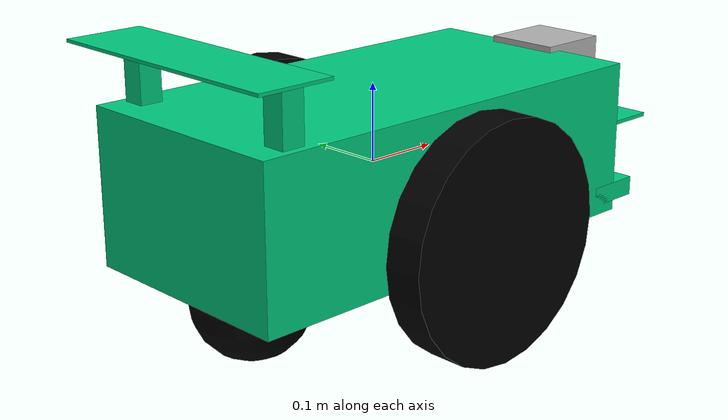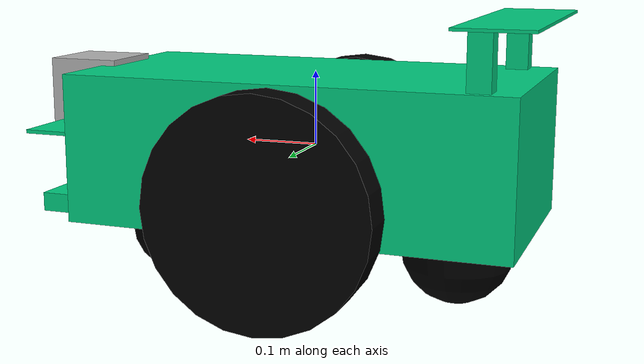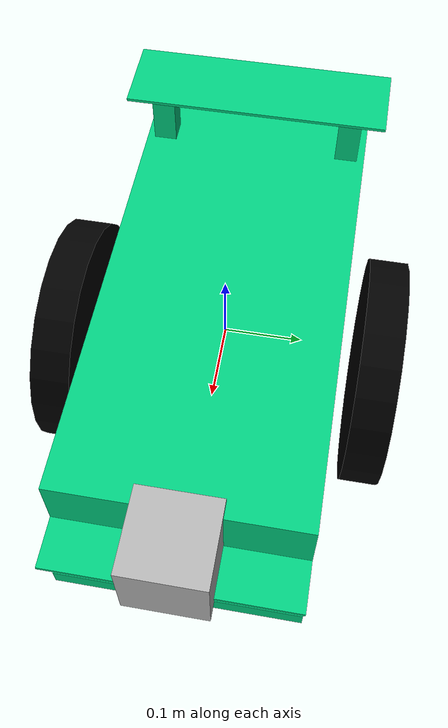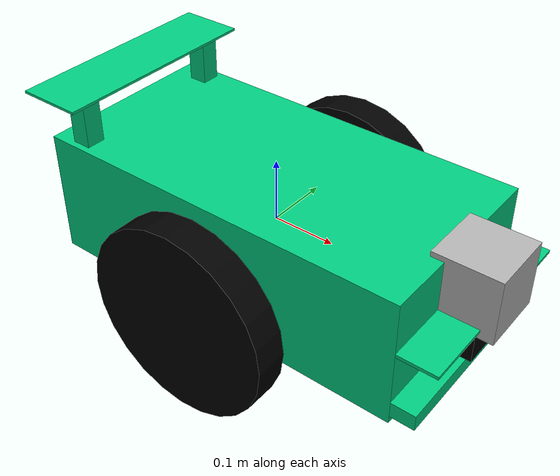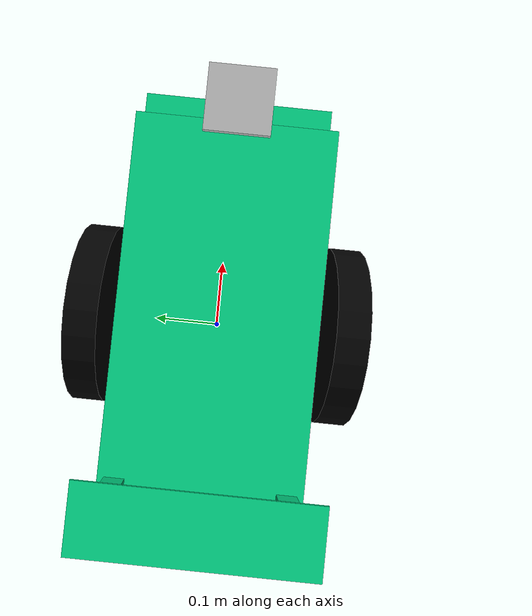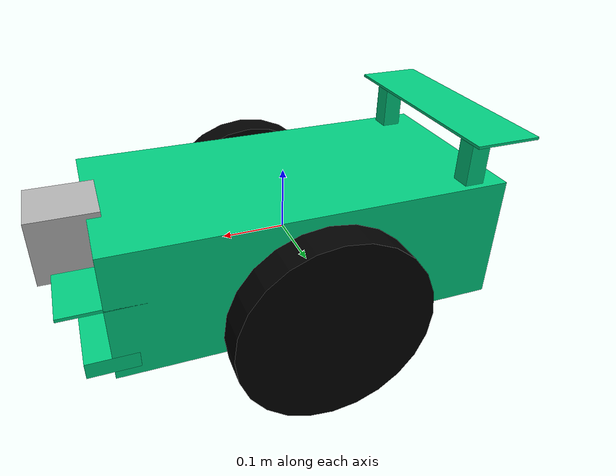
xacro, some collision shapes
<?xml version='1.0'?>

<robot name="dd_bot" xmlns:xacro="http://www.ros.org/wiki/xacro">
  <!-- Import file with plugins for the camera, the lidar and the wheels (differential drive model for the odometry) -->
  <xacro:include filename="$(find my_robot)/urdf/differential_drive_bot_plugins.gazebo" />
  <xacro:include filename="$(find my_robot)/urdf/colors.gazebo" />

  <link name="robot_footprint"></link>

  <joint name="robot_footprint_joint" type="fixed">
    <origin xyz="0 0 0" rpy="0 0 0" />
    <parent link="robot_footprint"/>
    <child link="chassis" />
  </joint>

  <link name='chassis'> <!-- This link encompasses the base and the caster wheels (Hence no need for additional links or joints)-->
    <pose>0 0 0.2 0 0 0</pose>

    <inertial>
      <mass value="15.0"/>
      <origin xyz="0.0 0 0" rpy=" 0 0 0"/>
      <inertia
          ixx="0.1" ixy="0" ixz="0"
          iyy="0.1" iyz="0"
          izz="0.1"
      />
    </inertial>

    <collision name='chassis_collision'>
      <origin xyz="0 0 0" rpy=" 0 0 0"/>
      <geometry>
        <box size="0.6 0.3 0.2"/>
      </geometry>
    </collision>

    <visual name='chassis_visual'>
      <origin xyz="0 0 0" rpy=" 0 0 0"/>
      <geometry>
        <box size="0.6 0.3 0.2"/>
      </geometry>
      <material name="greenish">
        <color rgba="0.0 0.8 0.5 1.0"/>
      </material>
    </visual>

    <collision name='caster_wheel_collision'>
      <origin xyz="0.2 0 -0.125" rpy=" 0 0 0"/>
      <geometry>
        <sphere radius="0.0748"/>
      </geometry>
    </collision>

    <visual name='caster_wheel_visual'>
      <origin xyz="0.2 0 -0.125" rpy=" 0 0 0"/>
      <geometry>
        <sphere radius="0.075"/>
      </geometry>
      <material name="black">
	      <color rgba="0.0 0.0 0.0 1.0"/>
      </material>
    </visual>

    <collision name='caster_wheel_rear_collision'>
      <origin xyz="-0.2 0 -0.125" rpy=" 0 0 0"/>
      <geometry>
        <sphere radius="0.0748"/>
      </geometry>
    </collision>

    <visual name='caster_wheel_rear_visual'>
      <origin xyz="-0.2 0 -0.125" rpy=" 0 0 0"/>
      <geometry>
        <sphere radius="0.075"/>
      </geometry>
      <material name="black">
	      <color rgba="0.0 0.0 0.0 1.0"/>
      </material>
    </visual>

  </link>

  <link name="right_wheel">

    <inertial>
      <mass value="5.0"/>
      <origin xyz="0.0 0 0" rpy=" 0 1.5707 1.5707"/>
      <inertia
          ixx="0.1" ixy="0" ixz="0"
          iyy="0.1" iyz="0"
          izz="0.1"
      />
    </inertial>

    <visual>
      <origin xyz="0 0 0" rpy="0 1.5707 1.5707"/>
      <geometry>
        <cylinder radius="0.15" length="0.05"/>
      </geometry>
      <material name="black">
	  <color rgba="0.0 0.0 0.0 1.0"/>
      </material>
    </visual>

    <collision>
      <origin xyz="0 0 0" rpy="0 1.5707 1.5707"/>
      <geometry>
	 <cylinder radius="0.15" length="0.05"/>
      </geometry>
    </collision>

  </link>

  <link name="left_wheel">

    <inertial>
      <mass value="5.0"/>
      <origin xyz="0.0 0 0" rpy=" 0 1.5707 1.5707"/>
      <inertia
          ixx="0.1" ixy="0" ixz="0"
          iyy="0.1" iyz="0"
          izz="0.1"
      />
    </inertial>

    <collision>
      <origin xyz="0 0 0" rpy="0 1.5707 1.5707"/>
      <geometry>
	<cylinder radius="0.15" length="0.05"/>
      </geometry>
    </collision>

    <visual>
      <origin xyz="0 0 0" rpy="0 1.5707 1.5707"/>
      <geometry>
	<cylinder radius="0.15" length="0.05"/>
      </geometry>
      <material name="black">
	  <color rgba="0.0 0.0 0.0 1.0"/>
      </material>
    </visual>

  </link>

  <joint type="continuous" name="right_wheel_hinge">
    <origin xyz="0.0 0.2 -0.05" rpy="0 0 0"/>
    <child link="right_wheel"/>
    <parent link="chassis"/>
    <axis xyz="0 1 0" rpy="0 0 0"/>
    <limit effort="10000" velocity="1000"/>
    <dynamics damping="1.0" friction="1.0"/>
  </joint>

  <joint type="continuous" name="left_wheel_hinge">
    <origin xyz="0.0 -0.2 -0.05" rpy="0 0 0"/>
    <child link="left_wheel"/>
    <parent link="chassis"/>
    <axis xyz="0 1 0" rpy="0 0 0"/>
    <limit effort="10000" velocity="1000"/>
    <dynamics damping="1.0" friction="1.0"/>
  </joint>

  <link name="camera_base_plate">
    <inertial>
      <mass value="0.5"/>
      <origin xyz="0.075 0.3 0.025" rpy=" 0 0 0.0"/>
      <inertia
          ixx="1e-6" ixy="0" ixz="0"
          iyy="1e-6" iyz="0"
          izz="1e-6"
      />
    </inertial>

    <collision>
      <origin xyz="0 0 0" rpy="0.0 0.0 0.0"/>
      <geometry>
	      <box size="0.075 0.3 0.025"/>
      </geometry>
    </collision>

    <visual>
      <origin xyz="0 0 0" rpy="0 0.0 0.0"/>
      <geometry>
	      <box size="0.075 0.3 0.025"/>
      </geometry>
      <material name="greenish">
        <color rgba="0.0 0.8 0.5 1.0"/>
      </material>
    </visual>

  </link>

  <joint type="fixed" name="camera_base_plate_joint">
    <origin xyz="0.3 0.0 -0.075 " rpy="0 0 0"/>
    <child link="camera_base_plate"/>
    <parent link="chassis"/>
    <axis xyz="0 1 0" rpy="0 0 0"/>
  </joint>

  <link name="camera">

    <inertial>
      <mass value="0.1"/>
      <origin xyz="0.05 0.05 0.05" rpy=" 0 0 0"/>
      <inertia
          ixx="1e-6" ixy="0" ixz="0"
          iyy="1e-6" iyz="0"
          izz="1e-6"
      />
    </inertial>

    <visual>
      <origin xyz="0 0 0" rpy="0 0 0"/>
      <geometry>
        <box size="0.05 0.05 0.05"/>
      </geometry>
      <material name="black">
	<color rgba="0.0 0.0 0.0 1.0"/>
      </material>
    </visual>

    <collision>
      <origin xyz="0 0 0" rpy="0 0 0"/>
      <geometry>
        <box size="0.05 0.05 0.05"/>
      </geometry>
    </collision>

  </link>

  <joint type="fixed" name="camera_joint">
      <origin xyz="0.02 0 0.0375" rpy="0 0 0"/>
      <child link="camera"/>
      <parent link="camera_base_plate"/>
      <axis xyz="0 1 0" rpy="0 0 0"/>
      <limit effort="10000" velocity="1000"/>
      <dynamics damping="1.0" friction="1.0"/>
  </joint>

  <link name="laser_base_plate">
    <inertial>
      <mass value="0.5"/>
      <origin xyz="1.2 0.3 0.005" rpy=" 0 0 0.0"/>
      <inertia
          ixx="1e-6" ixy="0" ixz="0"
          iyy="1e-6" iyz="0"
          izz="1e-6"
      />
    </inertial>

    <collision>
      <origin xyz="0 0 0" rpy="0.0 0.0 0.0"/>
      <geometry>
        <box size="1.2 0.3 0.005"/>
      </geometry>
    </collision>

    <visual>
      <origin xyz="0 0 0" rpy="0 0.0 0.0"/>
      <geometry>
        <box size="0.12 0.3 0.005"/>
      </geometry>
      <material name="greenish">
        <color rgba="0.0 0.8 0.5 1.0"/>
      </material>
    </visual>

  </link>

  <joint type="fixed" name="laser_base_plate_joint">
    <origin xyz="0.3 0.0 0.02 " rpy="0 0 0"/>
    <child link="laser_base_plate"/>
    <parent link="chassis"/>
    <axis xyz="0 1 0" rpy="0 0 0"/>
  </joint>

  <link name="hokuyo">

    <inertial>
      <mass value="1e-5"/>
      <origin xyz="0.1 0.1 0.1" rpy="0 0 0"/>
      <inertia
          ixx="1e-6" ixy="0" ixz="0"
          iyy="1e-6" iyz="0"
          izz="1e-6"
      />
    </inertial>

    <visual>
      <origin xyz="0 0 0" rpy="0 0 0"/>
      <geometry>
        <mesh filename="package://my_robot/meshes/hokuyo.dae"/>
      </geometry>
    </visual>-->

    <collision>
      <origin xyz="0 0 0" rpy="0 0 0"/>
      <geometry>
        <box size="0.1 0.1 0.1"/>
      </geometry>
    </collision>

  </link>

  <joint type="fixed" name="hokuyo_joint">
    <origin xyz="0.03 0.0 0.038" rpy="0 0 0"/>
    <child link="hokuyo"/>
    <parent link="laser_base_plate"/>
    <axis xyz="0 1 0" rpy="0 0 0"/>
    <limit effort="10000" velocity="1000"/>
    <dynamics damping="1.0" friction="1.0"/>
  </joint>

  <link name="spoiler_left_mount">
    <inertial>
      <mass value="0.5"/>
      <origin xyz="0.03 0.03 0.1" rpy=" 0 0 0.0"/>
      <inertia
          ixx="1e-6" ixy="0" ixz="0"
          iyy="1e-6" iyz="0"
          izz="1e-6"
      />
    </inertial>

    <collision>
      <origin xyz="0 0 0" rpy="0.0 0.0 0.0"/>
      <geometry>
        <box size="0.03 0.03 0.1"/>
      </geometry>
    </collision>

    <visual>
      <origin xyz="0 0 0" rpy="0 0.0 0.0"/>
      <geometry>
        <box size="0.03 0.03 0.1"/>
      </geometry>
      <material name="greenish">
        <color rgba="0.0 0.8 0.5 1.0"/>
      </material>
    </visual>

  </link>

  <link name="spoiler_right_mount">
    <inertial>
      <mass value="0.5"/>
      <origin xyz="0.03 0.03 0.1" rpy=" 0 0 0.0"/>
      <inertia
          ixx="1e-6" ixy="0" ixz="0"
          iyy="1e-6" iyz="0"
          izz="1e-6"
      />
    </inertial>

    <collision>
      <origin xyz="0 0 0" rpy="0.0 0.0 0.0"/>
      <geometry>
        <box size="0.03 0.03 0.1"/>
      </geometry>
    </collision>

    <visual>
      <origin xyz="0 0 0" rpy="0 0.0 0.0"/>
      <geometry>
        <box size="0.03 0.03 0.1"/>
      </geometry>
      <material name="greenish">
        <color rgba="0.0 0.8 0.5 1.0"/>
      </material>
    </visual>

  </link>

  <joint type="fixed" name="spoiler_left_mount_joint">
    <origin xyz="-0.25 -0.125 0.125 " rpy="0 0 0"/>
    <child link="spoiler_left_mount"/>
    <parent link="chassis"/>
    <axis xyz="0 1 0" rpy="0 0 0"/>
  </joint>

  <joint type="fixed" name="spoiler_right_mount_joint">
    <origin xyz="-0.25 0.125 0.125 " rpy="0 0 0"/>
    <child link="spoiler_right_mount"/>
    <parent link="chassis"/>
    <axis xyz="0 1 0" rpy="0 0 0"/>
  </joint>

  <link name="spoiler">
    <inertial>
      <mass value="2.0"/>
      <origin xyz="0.1 0.340 0.004" rpy=" 0 0 0.0"/>
      <inertia
          ixx="1e-3" ixy="0" ixz="0"
          iyy="1e-3" iyz="0"
          izz="1e-3"
      />
    </inertial>

    <collision>
      <origin xyz="0 0 0" rpy="0.0 0.0 0.0"/>
      <geometry>
        <box size="0.1 0.340 0.004"/>
      </geometry>
    </collision>

    <visual>
      <origin xyz="0 0 0" rpy="0 0.0 0.0"/>
      <geometry>
        <box size="0.1 0.340 0.004"/>
      </geometry>
      <material name="greenish">
        <color rgba="0.0 0.8 0.5 1.0"/>
      </material>
    </visual>

  </link>

  <joint type="fixed" name="spoiler_joint">
    <origin xyz="-0.27 0.0 0.176 " rpy="0 0 0"/>
    <child link="spoiler"/>
    <parent link="chassis"/>
    <axis xyz="0 1 0" rpy="0 0 0"/>
  </joint>
</robot>
